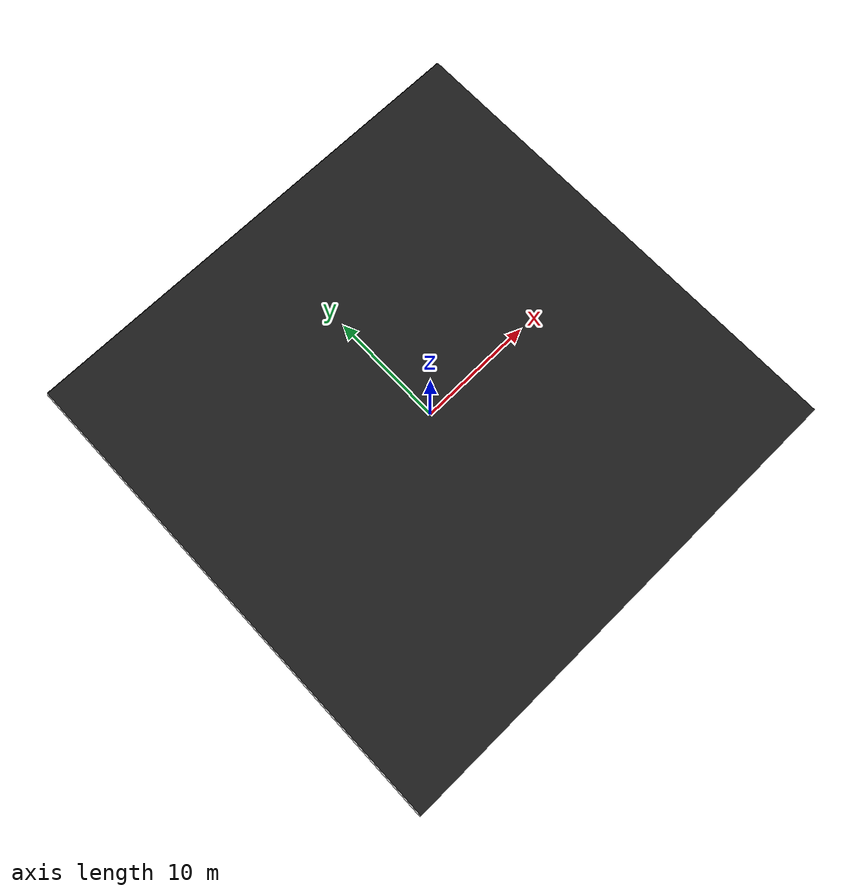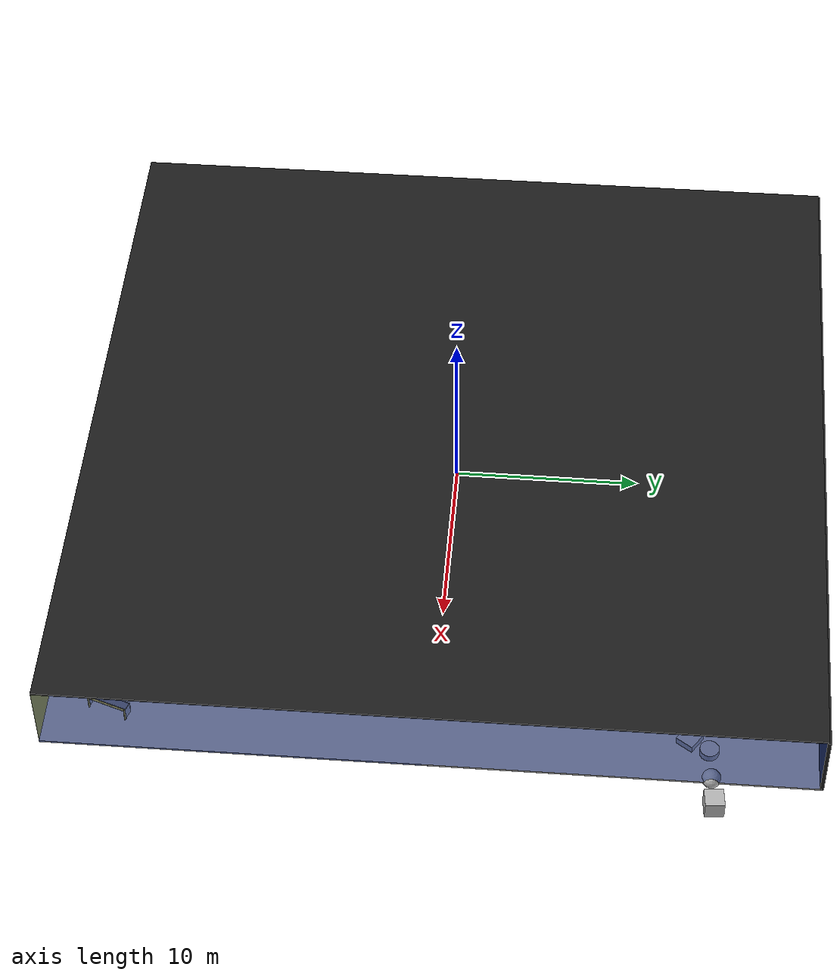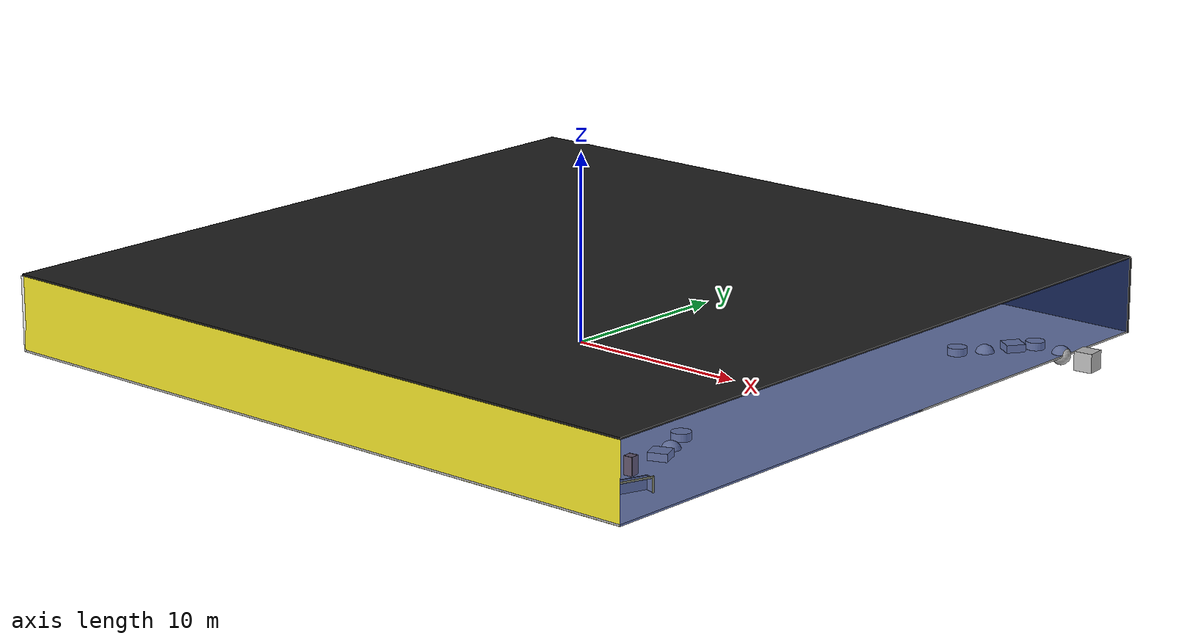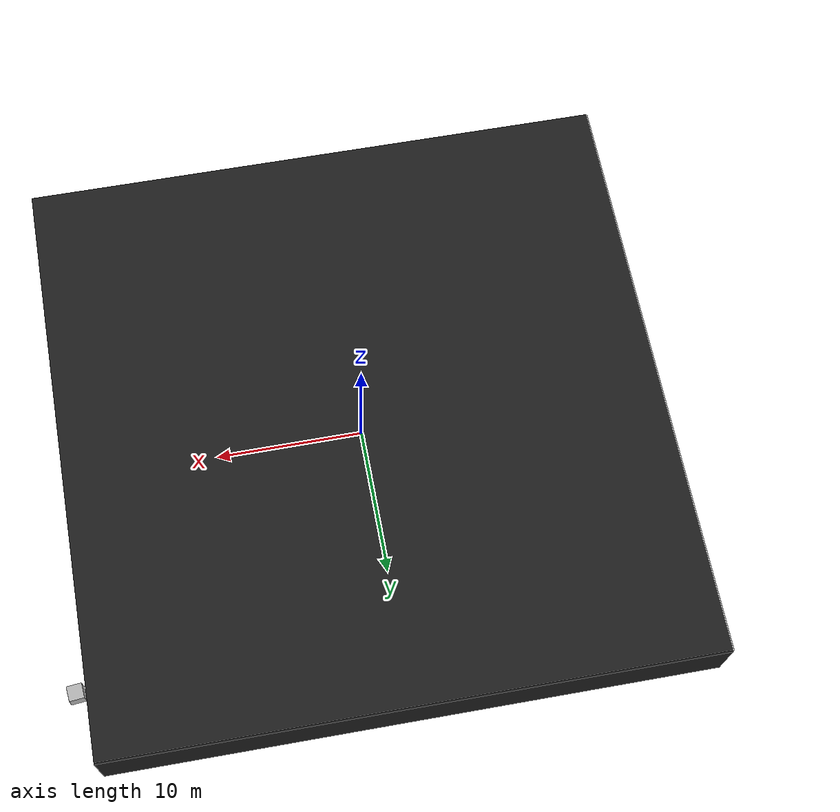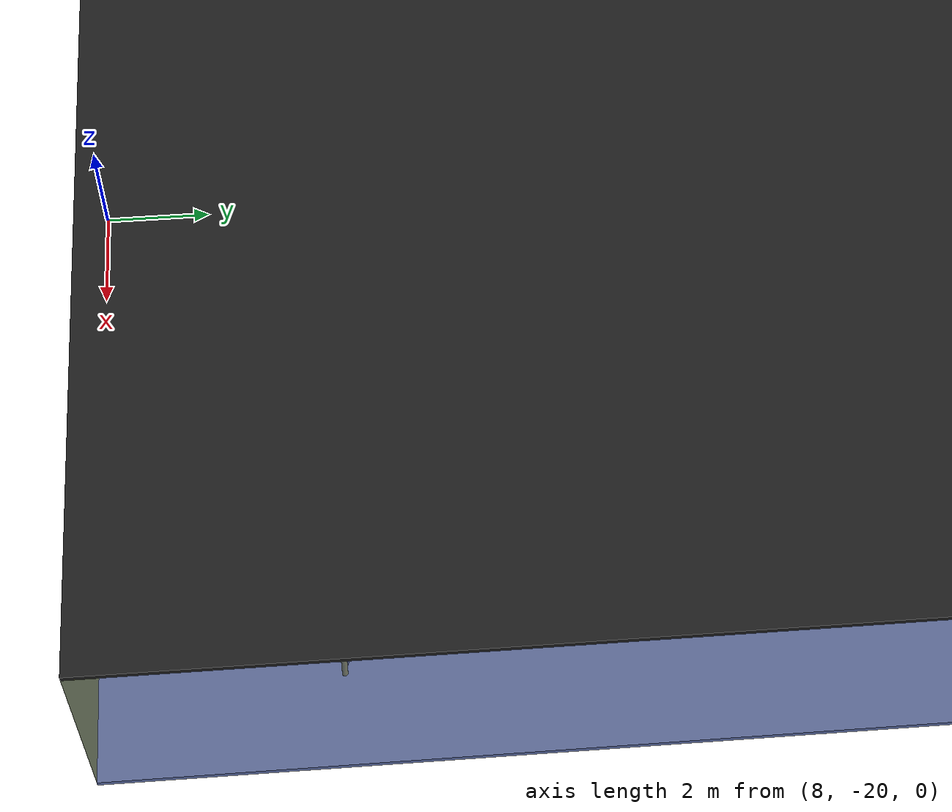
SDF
<sdf version="1.4">
 <world name="default">
  <physics type="ode">
   <max_step_size>0.001</max_step_size>
   <real_time_factor>1</real_time_factor>
   <real_time_update_rate>1000</real_time_update_rate>
   <gravity>0 0 -9.8</gravity>
  </physics>
  <scene><ambient>0.4 0.4 0.4 1</ambient><background>0.7 0.7 0.7 1</background><shadows>1</shadows></scene>
  <model name="Surrounding">
   <static>1</static>
   <link name="Ceiling">
    <collision name="Ceiling_Collision"><geometry><box><size>40 40 0.1</size></box></geometry></collision>
    <visual name="Ceiling_Visual">
     <geometry><box><size>40 40 0.1</size></box></geometry>
     <material>
      <script><uri>file://media/materials/scripts/gazebo.material</uri><name>Gazebo/Black</name></script>
     </material>
    </visual>
    <pose>0 0 4.05 0 0 0</pose>
   </link>
   <link name="Wall_South">
    <collision name="Wall_South_Collision">
     <geometry><box><size>40 0 4</size></box></geometry>
     <pose>0 0 2 0 -0 0</pose>
    </collision>
    <visual name="Wall_South_Visual">
     <pose>0 0 2 0 -0 0</pose>
     <geometry><box><size>40 0 4</size></box></geometry>
     <material>
      <script><uri>file://media/materials/scripts/gazebo.material</uri><name>Gazebo/Yellow</name></script>
     </material>
    </visual>
    <velocity_decay><linear>0</linear><angular>0</angular></velocity_decay>
    <pose>0 -20 0 0 -0 0</pose>
   </link>
   <link name="Wall_East">
    <collision name="Wall_21_Collision">
     <geometry><box><size>40 0 4</size></box></geometry>
     <pose>0 0 2 0 -0 0</pose>
    </collision>
    <visual name="Wall_21_Visual">
     <pose>0 0 2 0 -0 0</pose>
     <geometry><box><size>40 0 4</size></box></geometry>
     <material>
      <script><uri>file://media/materials/scripts/gazebo.material</uri><name>Gazebo/BlueTransparent</name></script>
     </material>
    </visual>
    <velocity_decay><linear>0</linear><angular>0</angular></velocity_decay>
    <pose>20 0 0 0 -0 1.5708</pose>
   </link>
   <link name="Wall_North">
    <collision name="Wall_22_Collision">
     <geometry><box><size>40 0.2 4</size></box></geometry>
     <pose>0 0 2 0 -0 0</pose>
    </collision>
    <visual name="Wall_22_Visual">
     <pose>0 0 2 0 -0 0</pose>
     <geometry><box><size>40 0.2 4</size></box></geometry>
     <material>
      <script><uri>file://media/materials/scripts/gazebo.material</uri><name>Gazebo/FlatBlack</name></script>
     </material>
    </visual>
    <velocity_decay><linear>0</linear><angular>0</angular></velocity_decay>
    <pose>0 20 0 0 -0 0</pose>
   </link>
   <link name="Wall_West">
    <collision name="Wall_23_Collision">
     <geometry><box><size>40 0.2 4</size></box></geometry>
     <pose>0 0 2 0 -0 0</pose>
    </collision>
    <visual name="Wall_23_Visual">
     <pose>0 0 2 0 -0 0</pose>
     <geometry><box><size>40 0.2 4</size></box></geometry>
     <material>
      <script><uri>file://media/materials/scripts/gazebo.material</uri><name>Gazebo/WhiteGlow</name></script>
     </material>
    </visual>
    <velocity_decay><linear>0</linear><angular>0</angular></velocity_decay>
    <pose>-20 0 0 0 0 -1.5708</pose>
   </link>
   <link name="Ground_link">
    <collision name="collision">
     <pose>0 0 .05 0 -0 0</pose>
     <geometry><box><size>40 40 0.1</size></box></geometry>
    </collision>
    <visual name="visual">
     <pose>0 0 .05 0 -0 0</pose>
     <geometry><box><size>40 40 0.1</size></box></geometry>
     <material>
      <script><uri>file://media/materials/scripts/gazebo.material</uri><name>Gazebo/Pioneer2Body</name></script>
     </material>
    </visual>
   </link>
   <static>1</static>
  </model>
  <spherical_coordinates>
   <surface_model>EARTH_WGS84</surface_model>
   <latitude_deg>0</latitude_deg>
   <longitude_deg>0</longitude_deg>
   <elevation>0</elevation>
   <heading_deg>0</heading_deg>
  </spherical_coordinates>
  <light name="lightball_0" type="diffuse">
   <diffuse>0.8 0.8 0.8 1</diffuse>
   <specular>0.2 0.2 0.2 1</specular>
   <attenuation>
    <range>100</range>
    <constant>0.7</constant>
    <linear>0.01</linear>
    <quadratic>0.001</quadratic>
   </attenuation>
   <direction>-0.5 0.1 -0.9</direction>
   <pose>-16.070282896 10.8453915317 3.13816874546 0 0 0</pose>
  </light>
  <light name="lightball_1" type="diffuse">
   <diffuse>0.8 0.8 0.8 1</diffuse>
   <specular>0.2 0.2 0.2 1</specular>
   <attenuation>
    <range>100</range>
    <constant>0.7</constant>
    <linear>0.01</linear>
    <quadratic>0.001</quadratic>
   </attenuation>
   <direction>-0.5 0.1 -0.9</direction>
   <pose>-6.76494868948 16.0731060398 2.8125518255 0 0 0</pose>
  </light>
  <light name="lightball_2" type="diffuse">
   <diffuse>0.8 0.8 0.8 1</diffuse>
   <specular>0.2 0.2 0.2 1</specular>
   <attenuation>
    <range>100</range>
    <constant>0.7</constant>
    <linear>0.01</linear>
    <quadratic>0.001</quadratic>
   </attenuation>
   <direction>-0.5 0.1 -0.9</direction>
   <pose>-8.81298967241 5.13206291862 3.85835666279 0 0 0</pose>
  </light>
  <light name="lightball_3" type="diffuse">
   <diffuse>0.8 0.8 0.8 1</diffuse>
   <specular>0.2 0.2 0.2 1</specular>
   <attenuation>
    <range>100</range>
    <constant>0.7</constant>
    <linear>0.01</linear>
    <quadratic>0.001</quadratic>
   </attenuation>
   <direction>-0.5 0.1 -0.9</direction>
   <pose>11.4176732821 -13.9107441057 2.28352038862 0 0 0</pose>
  </light>
  <light name="lightball_4" type="diffuse">
   <diffuse>0.8 0.8 0.8 1</diffuse>
   <specular>0.2 0.2 0.2 1</specular>
   <attenuation>
    <range>100</range>
    <constant>0.7</constant>
    <linear>0.01</linear>
    <quadratic>0.001</quadratic>
   </attenuation>
   <direction>-0.5 0.1 -0.9</direction>
   <pose>10.0459149851 7.99205958693 1.84700624716 0 0 0</pose>
  </light>
  <light name="lightball_5" type="diffuse">
   <diffuse>0.8 0.8 0.8 1</diffuse>
   <specular>0.2 0.2 0.2 1</specular>
   <attenuation>
    <range>100</range>
    <constant>0.7</constant>
    <linear>0.01</linear>
    <quadratic>0.001</quadratic>
   </attenuation>
   <direction>-0.5 0.1 -0.9</direction>
   <pose>14.1054336201 0.161562997923 2.1829957011 0 0 0</pose>
  </light>
  <light name="lightball_6" type="diffuse">
   <diffuse>0.8 0.8 0.8 1</diffuse>
   <specular>0.2 0.2 0.2 1</specular>
   <attenuation>
    <range>100</range>
    <constant>0.7</constant>
    <linear>0.01</linear>
    <quadratic>0.001</quadratic>
   </attenuation>
   <direction>-0.5 0.1 -0.9</direction>
   <pose>2.38325413809 9.04106486578 1.56862925656 0 0 0</pose>
  </light>
  <light name="lightball_7" type="diffuse">
   <diffuse>0.8 0.8 0.8 1</diffuse>
   <specular>0.2 0.2 0.2 1</specular>
   <attenuation>
    <range>100</range>
    <constant>0.7</constant>
    <linear>0.01</linear>
    <quadratic>0.001</quadratic>
   </attenuation>
   <direction>-0.5 0.1 -0.9</direction>
   <pose>-11.1111297211 8.92769246818 0.784073838769 0 0 0</pose>
  </light>
  <light name="lightball_8" type="diffuse">
   <diffuse>0.8 0.8 0.8 1</diffuse>
   <specular>0.2 0.2 0.2 1</specular>
   <attenuation>
    <range>100</range>
    <constant>0.7</constant>
    <linear>0.01</linear>
    <quadratic>0.001</quadratic>
   </attenuation>
   <direction>-0.5 0.1 -0.9</direction>
   <pose>-17.1124795704 -16.2061875913 3.30316278979 0 0 0</pose>
  </light>
  <include>
   <uri>model://robocup_3Dsim_goal</uri>
   <pose>-15.0591250954 -5.46086709888 0 0 0 2.32001095574</pose>
  </include>
  <include>
   <uri>model://construction_cone</uri>
   <pose>-12.5135821438 -18.5630050812 0 0 0 2.57249522619</pose>
  </include>
  <include><uri>model://cabinet</uri><pose>-11.0665977628 -14.4793895091 0 0 0 0.174260842679</pose></include>
  <include>
   <uri>model://construction_cone</uri>
   <pose>-12.4043269755 -10.5530660863 0 0 0 0.0799525190606</pose>
  </include>
  <include><uri>model://cabinet</uri><pose>-9.26908679861 -13.5743988287 0 0 0 2.33163268934</pose></include>
  <include><uri>model://cabinet</uri><pose>-7.56119876229 7.42517490228 0 0 0 1.94011522494</pose></include>
  <include>
   <uri>model://textured_shapes</uri>
   <pose>-8.58232300007 15.1337841191 0 0 0 0.615690813195</pose>
  </include>
  <include>
   <uri>model://textured_shapes</uri>
   <pose>-1.96270200941 -4.80916830744 0 0 0 0.983318281377</pose>
  </include>
  <include>
   <uri>model://textured_shapes</uri>
   <pose>-1.68881702222 8.77323734418 0 0 0 3.11020438575</pose>
  </include>
  <include>
   <uri>model://robocup_3Dsim_goal</uri>
   <pose>0.715410688551 -8.88663238767 0 0 0 0.151204082179</pose>
  </include>
  <include><uri>model://table</uri><pose>9.03302146813 -18.2398920439 0 0 0 1.81432638667</pose></include>
  <include>
   <uri>model://textured_shapes</uri>
   <pose>10.3397853345 -14.8240401528 0 0 0 0.560912714312</pose>
  </include>
  <include><uri>model://cabinet</uri><pose>9.91920868287 12.0808732832 0 0 0 1.8184981379</pose></include>
  <include><uri>model://cabinet</uri><pose>12.7761615219 -15.0626577046 0 0 0 0.97234314037</pose></include>
  <include><uri>model://cabinet</uri><pose>15.8619879056 -14.5045112742 0 0 0 0.0916459802081</pose></include>
  <include>
   <uri>model://textured_shapes</uri>
   <pose>14.8383123767 -10.4451105113 0 0 0 0.372858587424</pose>
  </include>
  <include>
   <uri>model://textured_shapes</uri>
   <pose>16.6754575371 12.0280294879 0 0 0 2.54526339543</pose>
  </include>
  <include>
   <uri>model://robocup_3Dsim_goal</uri>
   <pose>17.9822205182 -16.7859770662 0 0 0 2.81052953812</pose>
  </include>
  <include>
   <uri>model://textured_shapes</uri>
   <pose>19.6790413118 14.4328073604 0 0 0 1.66473519353</pose>
  </include>
 </world>
</sdf>

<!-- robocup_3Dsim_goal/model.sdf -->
<sdf version="1.5">
  <model name="robocup_3d_goal">
    <static>true</static>
    <link name="left_post">
      <pose>0 1.05 0.45 0 0 0</pose>
      <collision name="collision">
        <geometry>
          <cylinder>
            <radius>0.05</radius>
            <length>0.9</length>
          </cylinder>
        </geometry>
      </collision>
      <visual name="visual">
        <geometry>
          <cylinder>
            <radius>0.05</radius>
            <length>0.9</length>
          </cylinder>
        </geometry>
        <material>
          <script>
            <uri>file://media/materials/scripts/gazebo.material</uri>
            <name>Gazebo/ZincYellow</name>
          </script>
        </material>
      </visual>
    </link>
    <link name="left_support_horiz_lower">
      <pose>0.30 1.05 0.01 0 0 0</pose>
      <collision name="collision">
        <geometry>
          <box>
            <size>0.50 0.02 0.02</size>
          </box>
        </geometry>
      </collision>
      <visual name="visual">
        <geometry>
          <box>
            <size>0.50 0.02 0.02</size>
          </box>
        </geometry>
        <material>
          <script>
            <uri>file://media/materials/scripts/gazebo.material</uri>
            <name>Gazebo/White</name>
          </script>
        </material>
      </visual>
    </link>
    <link name="left_support_horiz_upper">
      <pose>0.30 1.05 0.79 0 0 0</pose>
      <collision name="collision">
        <geometry>
          <box>
            <size>0.50 0.02 0.02</size>
          </box>
        </geometry>
      </collision>
      <visual name="visual">
        <geometry>
          <box>
            <size>0.50 0.02 0.02</size>
          </box>
        </geometry>
        <material>
          <script>
            <uri>file://media/materials/scripts/gazebo.material</uri>
            <name>Gazebo/White</name>
          </script>
        </material>
      </visual>
    </link>
    <link name="left_support_vertical">
      <pose>0.56 1.05 0.4 0 1.5708 0</pose>
      <collision name="collision">
        <geometry>
          <box>
            <size>0.80 0.02 0.02</size>
          </box>
        </geometry>
      </collision>
      <visual name="visual">
        <geometry>
          <box>
            <size>0.80 0.02 0.02</size>
          </box>
        </geometry>
        <material>
          <script>
            <uri>file://media/materials/scripts/gazebo.material</uri>
            <name>Gazebo/White</name>
          </script>
        </material>
      </visual>
    </link>
    <link name="right_support_horiz_lower">
      <pose>0.30 -1.05 0.01 0 0 0</pose>
      <collision name="collision">
        <geometry>
          <box>
            <size>0.50 0.02 0.02</size>
          </box>
        </geometry>
      </collision>
      <visual name="visual">
        <geometry>
          <box>
            <size>0.50 0.02 0.02</size>
          </box>
        </geometry>
        <material>
          <script>
            <uri>file://media/materials/scripts/gazebo.material</uri>
            <name>Gazebo/White</name>
          </script>
        </material>
      </visual>
    </link>
    <link name="right_support_horiz_upper">
      <pose>0.30 -1.05 0.79 0 0 0</pose>
      <collision name="collision">
        <geometry>
          <box>
            <size>0.50 0.02 0.02</size>
          </box>
        </geometry>
      </collision>
      <visual name="visual">
        <geometry>
          <box>
            <size>0.50 0.02 0.02</size>
          </box>
        </geometry>
        <material>
          <script>
            <uri>file://media/materials/scripts/gazebo.material</uri>
            <name>Gazebo/White</name>
          </script>
        </material>
      </visual>
    </link>
    <link name="right_support_vertical">
      <pose>0.56 -1.05 0.4 0 1.5708 0</pose>
      <collision name="collision">
        <geometry>
          <box>
            <size>0.80 0.02 0.02</size>
          </box>
        </geometry>
      </collision>
      <visual name="visual">
        <geometry>
          <box>
            <size>0.80 0.02 0.02</size>
          </box>
        </geometry>
        <material>
          <script>
            <uri>file://media/materials/scripts/gazebo.material</uri>
            <name>Gazebo/White</name>
          </script>
        </material>
      </visual>
    </link>
    <link name="center_support_horiz_lower">
      <pose>0.56 0 0.01 0 1.5708 0</pose>
      <collision name="collision">
        <geometry>
          <box>
            <size>0.02 2.08 0.02</size>
          </box>
        </geometry>
      </collision>
      <visual name="visual">
        <geometry>
          <box>
            <size>0.02 2.08 0.02</size>
          </box>
        </geometry>
        <material>
          <script>
            <uri>file://media/materials/scripts/gazebo.material</uri>
            <name>Gazebo/White</name>
          </script>
        </material>
      </visual>
    </link>
    <link name="center_support_horiz_upper">
      <pose>0.56 0 0.79 0 1.5708 0</pose>
      <collision name="collision">
        <geometry>
          <box>
            <size>0.02 2.08 0.02</size>
          </box>
        </geometry>
      </collision>
      <visual name="visual">
        <geometry>
          <box>
            <size>0.02 2.08 0.02</size>
          </box>
        </geometry>
        <material>
          <script>
            <uri>file://media/materials/scripts/gazebo.material</uri>
            <name>Gazebo/White</name>
          </script>
        </material>
      </visual>
    </link>
    <link name="right_post">
      <pose>0 -1.05 0.45 0 0 0</pose>
      <collision name="collision">
        <geometry>
          <cylinder>
            <radius>0.05</radius>
            <length>0.9</length>
          </cylinder>
        </geometry>
      </collision>
      <visual name="visual">
        <geometry>
          <cylinder>
            <radius>0.05</radius>
            <length>0.9</length>
          </cylinder>
        </geometry>
        <material>
          <script>
            <uri>file://media/materials/scripts/gazebo.material</uri>
            <name>Gazebo/ZincYellow</name>
          </script>
        </material>
      </visual>
    </link>
    <link name="crossbar">
      <pose>0 0 0.85 1.57 1.57 0</pose>
      <collision name="collision">
        <geometry>
          <cylinder>
            <radius>0.05</radius>
            <length>2.0</length>
          </cylinder>
        </geometry>
      </collision>
      <visual name="visual">
        <geometry>
          <cylinder>
            <radius>0.05</radius>
            <length>2.0</length>
          </cylinder>
        </geometry>
        <material>
          <script>
            <uri>file://media/materials/scripts/gazebo.material</uri>
            <name>Gazebo/ZincYellow</name>
          </script>
        </material>
      </visual>
    </link>
    <link name="center_net">
      <pose>0.56 0 0.40 0 0 0</pose>
      <collision name="collision">
        <geometry>
          <box>
            <size>0.01 2.1 0.80</size>
          </box>
        </geometry>
      </collision>
      <visual name="visual">
        <geometry>
          <box>
            <size>0.01 2.1 0.80</size>
          </box>
        </geometry>
        <material>
          <script>
            <uri>model://../model_source/models/robocup09_spl_field/materials/scripts/</uri>
            <uri>model://../model_source/models/robocup09_spl_field/materials/textures/</uri>
            <name>RoboCup/Net</name>
          </script>
        </material>
      </visual>
    </link>
    <link name="left_net">
      <pose>0.30 1.05 0.40 0 0 0</pose>
      <collision name="collision">
        <geometry>
          <box>
            <size>0.50 0.01 0.76</size>
          </box>
        </geometry>
      </collision>
      <visual name="visual">
        <geometry>
          <box>
            <size>0.50 0.01 0.76</size>
          </box>
        </geometry>
        <material>
          <script>
            <uri>model://../model_source/models/robocup09_spl_field/materials/scripts/</uri>
            <uri>model://../model_source/models/robocup09_spl_field/materials/textures/</uri>
            <name>RoboCup/Net</name>
          </script>
        </material>
      </visual>
    </link>
    <link name="right_net">
      <pose>0.30 -1.05 0.40 0 0 0</pose>
      <collision name="collision">
        <geometry>
          <box>
            <size>0.50 0.01 0.76</size>
          </box>
        </geometry>
      </collision>
      <visual name="visual">
        <geometry>
          <box>
            <size>0.50 0.01 0.76</size>
          </box>
        </geometry>
        <material>
          <script>
            <uri>model://../model_source/models/robocup09_spl_field/materials/scripts/</uri>
            <uri>model://../model_source/models/robocup09_spl_field/materials/textures/</uri>
            <name>RoboCup/Net</name>
          </script>
        </material>
      </visual>
    </link>
  </model>
</sdf>

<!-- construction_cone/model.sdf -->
<sdf version="1.5">
  <model name="Construction Cone">
    <link name="link">
      <collision name="collision">
        <geometry>
          <mesh>
            <scale>10 10 10</scale>
            <uri>file://isr-testbed/construction_cone/meshes/construction_cone.dae</uri>
          </mesh>
        </geometry>
      </collision>
      <visual name="visual">
        <geometry>
          <mesh>
            <scale>10 10 10</scale>
            <uri>file://isr-testbed/construction_cone/meshes/construction_cone.dae</uri>
          </mesh>
        </geometry>
      </visual>
    </link>
  </model>
</sdf>

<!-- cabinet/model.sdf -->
<sdf version="1.5">
  <model name="cabinet">
    <static>true</static>
    <link name="cabinet_bottom_plate">
      <inertial>
        <pose>0 0 -1 0 0 0</pose>
        <inertia>
          <ixx>2.050000</ixx>
          <ixy>0</ixy>
          <ixz>0</ixz>
          <iyy>2.050000</iyy>
          <iyz>0</iyz>
          <izz>2.050000</izz>
        </inertia>
        <mass>25.000000</mass>
      </inertial>
      <collision name="cabinet_bottom_plate_geom">
        <pose>0 0 0.010000 0 0 0</pose>
        <geometry>
          <box>
            <size>0.450000 0.450000 0.020000</size>
          </box>
        </geometry>
      </collision>
      <visual name="cabinet_bottom_plate_geom_visual">
        <pose>0 0 0.010000 0 0 0</pose>
        <geometry>
          <box>
            <size>0.450000 0.450000 0.020000</size>
          </box>
        </geometry>
        <material>
          <script>
            <uri>model://media/materials/scripts/gazebo.material</uri>
            <name>Gazebo/Wood</name>
          </script>
        </material>
      </visual>
      <collision name="cabinet_bottom_plate_geom_cabinet_back_plate">
        <pose>0.235000 0 0.510000 0 0 0</pose>
        <geometry>
          <box>
            <size>0.020000 0.450000 1.020000</size>
          </box>
        </geometry>
      </collision>
      <visual name="cabinet_bottom_plate_geom_cabinet_back_plate_visual">
        <pose>0.235000 0 0.510000 0 0 0</pose>
        <geometry>
          <box>
            <size>0.020000 0.450000 1.020000</size>
          </box>
        </geometry>
        <material>
          <script>
            <uri>model://media/materials/scripts/gazebo.material</uri>
            <name>Gazebo/Wood</name>
          </script>
        </material>
      </visual>
      <collision name="cabinet_bottom_plate_geom_cabinet_left_plate">
        <pose>0 0.235000 0.510000 0 0 0</pose>
        <geometry>
          <box>
            <size>0.450000 0.020000 1.020000</size>
          </box>
        </geometry>
      </collision>
      <visual name="cabinet_bottom_plate_geom_cabinet_left_plate_visual">
        <pose>0 0.235000 0.510000 0 0 0</pose>
        <geometry>
          <box>
            <size>0.450000 0.020000 1.020000</size>
          </box>
        </geometry>
        <material>
          <script>
            <uri>model://media/materials/scripts/gazebo.material</uri>
            <name>Gazebo/Wood</name>
          </script>
        </material>
      </visual>
      <collision name="cabinet_bottom_plate_geom_cabinet_middle_plate">
        <pose>0 0 0.510000 0 0 0</pose>
        <geometry>
          <box>
            <size>0.450000 0.450000 0.020000</size>
          </box>
        </geometry>
      </collision>
      <visual name="cabinet_bottom_plate_geom_cabinet_middle_plate_visual">
        <pose>0 0 0.510000 0 0 0</pose>
        <geometry>
          <box>
            <size>0.450000 0.450000 0.020000</size>
          </box>
        </geometry>
        <material>
          <script>
            <uri>model://media/materials/scripts/gazebo.material</uri>
            <name>Gazebo/Wood</name>
          </script>
        </material>
      </visual>
      <collision name="cabinet_bottom_plate_geom_cabinet_right_plate">
        <pose>0 -0.235000 0.510000 0 0 0</pose>
        <geometry>
          <box>
            <size>0.450000 0.020000 1.020000</size>
          </box>
        </geometry>
      </collision>
      <visual name="cabinet_bottom_plate_geom_cabinet_right_plate_visual">
        <pose>0 -0.235000 0.510000 0 0 0</pose>
        <geometry>
          <box>
            <size>0.450000 0.020000 1.020000</size>
          </box>
        </geometry>
        <material>
          <script>
            <uri>model://media/materials/scripts/gazebo.material</uri>
            <name>Gazebo/Wood</name>
          </script>
        </material>
      </visual>
      <collision name="cabinet_bottom_plate_geom_cabinet_top_plate">
        <pose>0 0 1.010000 0 0 0</pose>
        <geometry>
          <box>
            <size>0.450000 0.450000 0.020000</size>
          </box>
        </geometry>
      </collision>
      <visual name="cabinet_bottom_plate_geom_cabinet_top_plate_visual">
        <pose>0 0 1.010000 0 0 0</pose>
        <geometry>
          <box>
            <size>0.450000 0.450000 0.020000</size>
          </box>
        </geometry>
        <material>
          <script>
            <uri>model://media/materials/scripts/gazebo.material</uri>
            <name>Gazebo/Wood</name>
          </script>
        </material>
      </visual>
    </link>
  </model>
</sdf>

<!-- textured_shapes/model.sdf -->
<sdf version="1.6">
  <model name="textured_shapes">
    <pose>0 0 0.5 0 0 0</pose>
    <link name="box">
      <pose>0 -1.5 0 0 0 0</pose>
      <collision name="collision">
        <geometry>
          <box>
            <size>1 1 1</size>
          </box>
        </geometry>
      </collision>
      <visual name="visual">
        <geometry>
          <box>
            <size>1 1 1</size>
          </box>
        </geometry>
        <material>
          <script>
            <uri>model://../model_source/models/textured_shapes/materials/scripts</uri>
            <uri>model://../model_source/models/textured_shapes/materials/textures</uri>
            <name>TexturedShape/Squares</name>
          </script>
        </material>
      </visual>
    </link>
    <link name="sphere">
      <collision name="collision">
        <geometry>
          <sphere>
            <radius>0.5</radius>
          </sphere>
        </geometry>
      </collision>
      <visual name="visual">
        <geometry>
          <sphere>
            <radius>0.5</radius>
          </sphere>
        </geometry>
        <material>
          <script>
            <uri>model://../model_source/models/textured_shapes/materials/scripts</uri>
            <uri>model://../model_source/models/textured_shapes/materials/textures</uri>
            <name>TexturedShape/Squares</name>
          </script>
        </material>
      </visual>
    </link>
    <link name="cylinder">
      <pose>0 1.5 0 0 0 0</pose>
      <collision name="collision">
        <geometry>
          <cylinder>
            <radius>0.5</radius>
            <length>1</length>
          </cylinder>
        </geometry>
      </collision>
      <visual name="visual">
        <geometry>
          <cylinder>
            <radius>0.5</radius>
            <length>1</length>
          </cylinder>
        </geometry>
        <material>
          <script>
            <uri>model://../model_source/models/textured_shapes/materials/scripts</uri>
            <uri>model://../model_source/models/textured_shapes/materials/textures</uri>
            <name>TexturedShape/Squares</name>
          </script>
        </material>
      </visual>
    </link>
  </model>
</sdf>

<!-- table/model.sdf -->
<sdf version="1.5">
  <model name="table">
    <static>true</static>
    <link name="link">
      <collision name="surface">
        <pose>0 0 1.0 0 0 0</pose>
        <geometry>
          <box>
            <size>1.5 0.8 0.03</size>
          </box>
        </geometry>
        <surface>
          <friction>
            <ode>
              <mu>0.6</mu>
              <mu2>0.6</mu2>
            </ode>
          </friction>
        </surface>
      </collision>
      <visual name="visual1">
        <pose>0 0 1.0 0 0 0</pose>
        <geometry>
          <box>
            <size>1.5 0.8 0.03</size>
          </box>
        </geometry>
        <material>
          <script>
            <uri>model://media/materials/scripts/gazebo.material</uri>
            <name>Gazebo/Wood</name>
          </script>
        </material>
      </visual>
      <collision name="front_left_leg">
        <pose>0.68 0.38 0.5 0 0 0</pose>
        <geometry>
          <cylinder>
            <radius>0.02</radius>
            <length>1.0</length>
          </cylinder>
        </geometry>
      </collision>
      <visual name="front_left_leg">
        <pose>0.68 0.38 0.5 0 0 0</pose>
        <geometry>
          <cylinder>
            <radius>0.02</radius>
            <length>1.0</length>
          </cylinder>
        </geometry>
        <material>
          <script>
            <uri>model://media/materials/scripts/gazebo.material</uri>
            <name>Gazebo/Grey</name>
          </script>
        </material>
      </visual>
      <collision name="front_right_leg">
        <pose>0.68 -0.38 0.5 0 0 0</pose>
        <geometry>
          <cylinder>
            <radius>0.02</radius>
            <length>1.0</length>
          </cylinder>
        </geometry>
      </collision>
      <visual name="front_right_leg">
        <pose>0.68 -0.38 0.5 0 0 0</pose>
        <geometry>
          <cylinder>
            <radius>0.02</radius>
            <length>1.0</length>
          </cylinder>
        </geometry>
        <material>
          <script>
            <uri>model://media/materials/scripts/gazebo.material</uri>
            <name>Gazebo/Grey</name>
          </script>
        </material>
      </visual>
      <collision name="back_right_leg">
        <pose>-0.68 -0.38 0.5 0 0 0</pose>
        <geometry>
          <cylinder>
            <radius>0.02</radius>
            <length>1.0</length>
          </cylinder>
        </geometry>
      </collision>
      <visual name="back_right_leg">
        <pose>-0.68 -0.38 0.5 0 0 0</pose>
        <geometry>
          <cylinder>
            <radius>0.02</radius>
            <length>1.0</length>
          </cylinder>
        </geometry>
        <material>
          <script>
            <uri>model://media/materials/scripts/gazebo.material</uri>
            <name>Gazebo/Grey</name>
          </script>
        </material>
      </visual>
      <collision name="back_left_leg">
        <pose>-0.68 0.38 0.5 0 0 0</pose>
        <geometry>
          <cylinder>
            <radius>0.02</radius>
            <length>1.0</length>
          </cylinder>
        </geometry>
      </collision>
      <visual name="back_left_leg">
        <pose>-0.68 0.38 0.5 0 0 0</pose>
        <geometry>
          <cylinder>
            <radius>0.02</radius>
            <length>1.0</length>
          </cylinder>
        </geometry>
        <material>
          <script>
            <uri>model://media/materials/scripts/gazebo.material</uri>
            <name>Gazebo/Grey</name>
          </script>
        </material>
      </visual>
    </link>
  </model>
</sdf>
